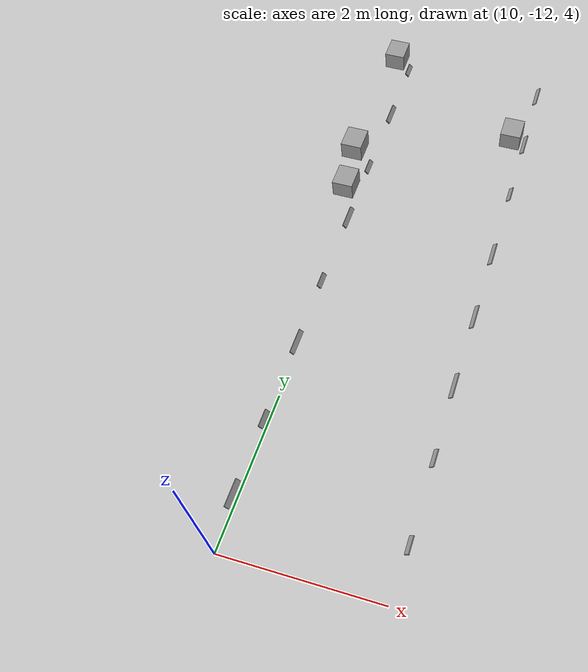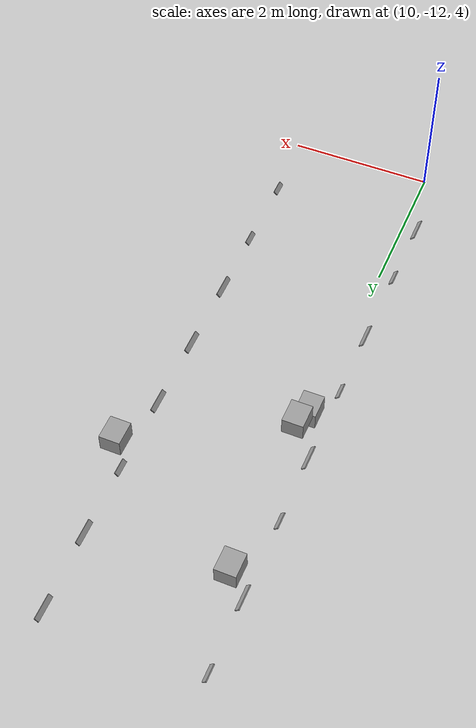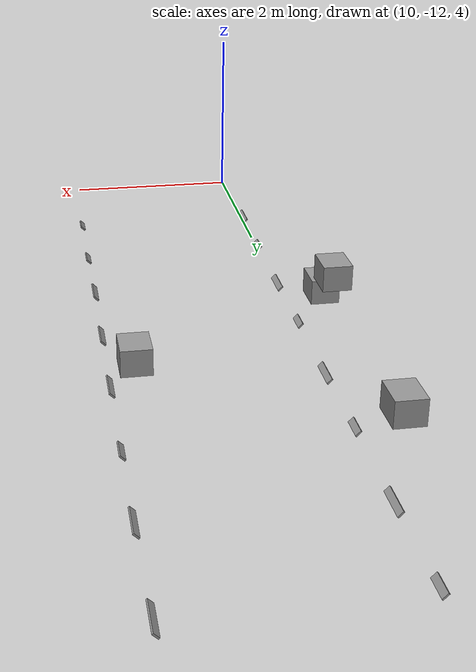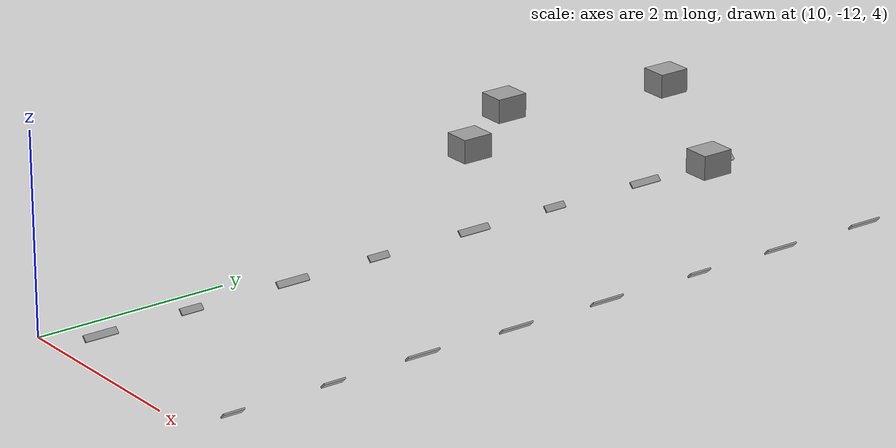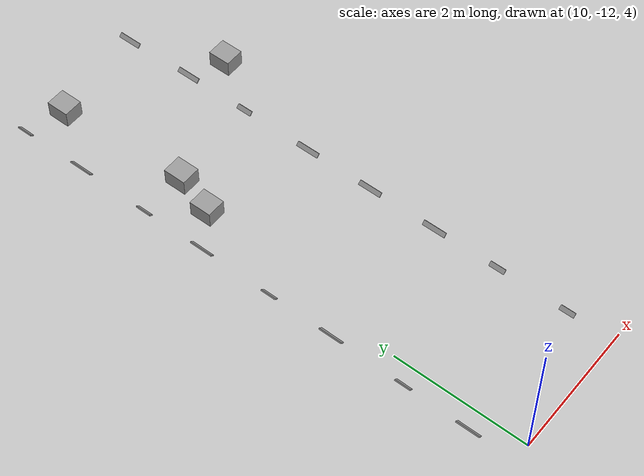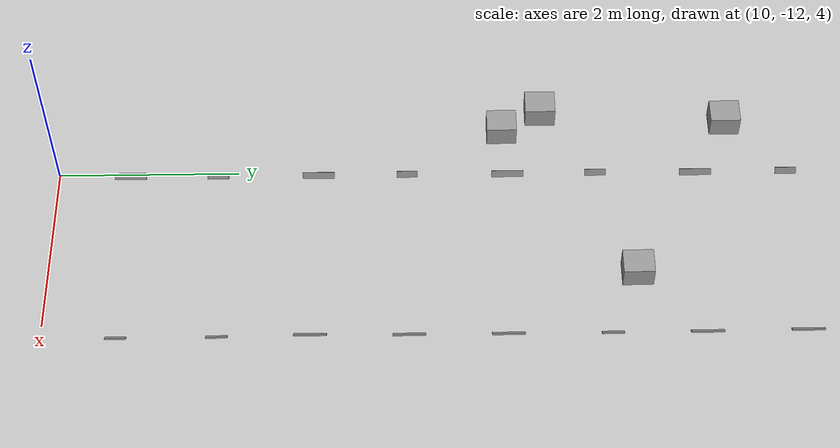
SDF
<sdf version="1.6">
 <world name="default">
  <physics name="default_physics" default="1" type="ode">
   <max_step_size>0.008</max_step_size>
   <real_time_factor>1</real_time_factor>
   <real_time_update_rate>125</real_time_update_rate>
  </physics>
  <physics name="dart_physics" default="0" type="dart">
   <max_step_size>0.008</max_step_size>
   <real_time_factor>1</real_time_factor>
   <real_time_update_rate>125</real_time_update_rate>
  </physics>
  <scene>
   <ambient>1 1 1 1</ambient>
   <background>0 0 0 1</background>
   <fog><density>0</density></fog>
   <grid>0</grid>
   <shadows>0</shadows>
  </scene>
  <gravity>0 0 0</gravity>
  <magnetic_field>0 0 0</magnetic_field>
  <atmosphere type="adiabatic"/>
  <spherical_coordinates>
   <surface_model>EARTH_WGS84</surface_model>
   <latitude_deg>0</latitude_deg>
   <longitude_deg>0</longitude_deg>
   <elevation>0</elevation>
   <heading_deg>0</heading_deg>
  </spherical_coordinates>
  <model name="light0">
   <pose>12.0022 -9.16995 3.79 0 -0.792 0</pose>
   <link name="link">
    <inertial>
     <mass>1</mass>
     <inertia>
      <ixx>0.166667</ixx>
      <ixy>0</ixy>
      <ixz>0</ixz>
      <iyy>0.166667</iyy>
      <iyz>0</iyz>
      <izz>0.166667</izz>
     </inertia>
    </inertial>
    <collision name="collision"><geometry><box><size>0.071232 0.355734 0.01687</size></box></geometry></collision>
    <visual name="visual">
     <geometry><box><size>0.071232 0.355734 0.01687</size></box></geometry>
     <material>
      <script><name>Gazebo/Grey</name><uri>file://media/materials/scripts/gazebo.material</uri></script>
     </material>
    </visual>
   </link>
   <static>1</static>
  </model>
  <model name="light1">
   <pose>12.0084 -8.10747 3.78182 0 -0.780816 0</pose>
   <link name="link">
    <inertial>
     <mass>1</mass>
     <inertia>
      <ixx>0.166667</ixx>
      <ixy>0</ixy>
      <ixz>0</ixz>
      <iyy>0.166667</iyy>
      <iyz>0</iyz>
      <izz>0.166667</izz>
     </inertia>
    </inertial>
    <collision name="collision"><geometry><box><size>0.071232 0.355734 0.01687</size></box></geometry></collision>
    <visual name="visual">
     <geometry><box><size>0.071232 0.355734 0.01687</size></box></geometry>
     <material>
      <script><name>Gazebo/Grey</name><uri>file://media/materials/scripts/gazebo.material</uri></script>
     </material>
    </visual>
   </link>
   <static>1</static>
  </model>
  <model name="light2">
   <pose>12.0101 -7.04486 3.78182 0 -0.780816 0</pose>
   <link name="link">
    <inertial>
     <mass>1</mass>
     <inertia>
      <ixx>0.166667</ixx>
      <ixy>0</ixy>
      <ixz>0</ixz>
      <iyy>0.166667</iyy>
      <iyz>0</iyz>
      <izz>0.166667</izz>
     </inertia>
    </inertial>
    <collision name="collision"><geometry><box><size>0.071232 0.355734 0.01687</size></box></geometry></collision>
    <visual name="visual">
     <geometry><box><size>0.071232 0.355734 0.01687</size></box></geometry>
     <material>
      <script><name>Gazebo/Grey</name><uri>file://media/materials/scripts/gazebo.material</uri></script>
     </material>
    </visual>
   </link>
   <static>1</static>
  </model>
  <model name="light3">
   <pose>12.0119 -5.92762 3.78182 0 -0.780816 0</pose>
   <link name="link">
    <inertial>
     <mass>1</mass>
     <inertia>
      <ixx>0.166667</ixx>
      <ixy>0</ixy>
      <ixz>0</ixz>
      <iyy>0.166667</iyy>
      <iyz>0</iyz>
      <izz>0.166667</izz>
     </inertia>
    </inertial>
    <collision name="collision"><geometry><box><size>0.071232 0.239949 0.01687</size></box></geometry></collision>
    <visual name="visual">
     <geometry><box><size>0.071232 0.239949 0.01687</size></box></geometry>
     <material>
      <script><name>Gazebo/Grey</name><uri>file://media/materials/scripts/gazebo.material</uri></script>
     </material>
    </visual>
   </link>
   <static>1</static>
  </model>
  <model name="light4">
   <pose>12.0084 -4.91259 3.78182 0 -0.780816 0</pose>
   <link name="link">
    <inertial>
     <mass>1</mass>
     <inertia>
      <ixx>0.166667</ixx>
      <ixy>0</ixy>
      <ixz>0</ixz>
      <iyy>0.166667</iyy>
      <iyz>0</iyz>
      <izz>0.166667</izz>
     </inertia>
    </inertial>
    <collision name="collision"><geometry><box><size>0.071232 0.355734 0.01687</size></box></geometry></collision>
    <visual name="visual">
     <geometry><box><size>0.071232 0.355734 0.01687</size></box></geometry>
     <material>
      <script><name>Gazebo/Grey</name><uri>file://media/materials/scripts/gazebo.material</uri></script>
     </material>
    </visual>
   </link>
   <static>1</static>
  </model>
  <model name="light5">
   <pose>11.99 -3.83 3.77 0 -0.79 0</pose>
   <link name="link">
    <inertial>
     <mass>1</mass>
     <inertia>
      <ixx>0.166667</ixx>
      <ixy>0</ixy>
      <ixz>0</ixz>
      <iyy>0.166667</iyy>
      <iyz>0</iyz>
      <izz>0.166667</izz>
     </inertia>
    </inertial>
    <collision name="collision"><geometry><box><size>0.071232 0.355734 0.01687</size></box></geometry></collision>
    <visual name="visual">
     <geometry><box><size>0.071232 0.355734 0.01687</size></box></geometry>
     <material>
      <script><name>Gazebo/Grey</name><uri>file://media/materials/scripts/gazebo.material</uri></script>
     </material>
    </visual>
   </link>
   <static>1</static>
  </model>
  <model name="light6">
   <pose>12.0137 -10.1692 3.78182 0 -0.780816 0</pose>
   <link name="link">
    <inertial>
     <mass>1</mass>
     <inertia>
      <ixx>0.166667</ixx>
      <ixy>0</ixy>
      <ixz>0</ixz>
      <iyy>0.166667</iyy>
      <iyz>0</iyz>
      <izz>0.166667</izz>
     </inertia>
    </inertial>
    <collision name="collision"><geometry><box><size>0.071232 0.235975 0.01687</size></box></geometry></collision>
    <visual name="visual">
     <geometry><box><size>0.071232 0.235975 0.01687</size></box></geometry>
     <material>
      <script><name>Gazebo/Grey</name><uri>file://media/materials/scripts/gazebo.material</uri></script>
     </material>
    </visual>
   </link>
   <static>1</static>
  </model>
  <model name="light7">
   <pose>12.0154 -11.2495 3.78182 0 -0.780816 0</pose>
   <link name="link">
    <inertial>
     <mass>1</mass>
     <inertia>
      <ixx>0.166667</ixx>
      <ixy>0</ixy>
      <ixz>0</ixz>
      <iyy>0.166667</iyy>
      <iyz>0</iyz>
      <izz>0.166667</izz>
     </inertia>
    </inertial>
    <collision name="collision"><geometry><box><size>0.071232 0.224897 0.01687</size></box></geometry></collision>
    <visual name="visual">
     <geometry><box><size>0.071232 0.224897 0.01687</size></box></geometry>
     <material>
      <script><name>Gazebo/Grey</name><uri>file://media/materials/scripts/gazebo.material</uri></script>
     </material>
    </visual>
   </link>
   <static>1</static>
  </model>
  <model name="light8">
   <pose>9.86822 -9.12294 3.78182 0 0.780816 0</pose>
   <link name="link">
    <inertial>
     <mass>1</mass>
     <inertia>
      <ixx>0.166667</ixx>
      <ixy>0</ixy>
      <ixz>0</ixz>
      <iyy>0.166667</iyy>
      <iyz>0</iyz>
      <izz>0.166667</izz>
     </inertia>
    </inertial>
    <collision name="collision"><geometry><box><size>0.071232 0.355734 0.01687</size></box></geometry></collision>
    <visual name="visual">
     <geometry><box><size>0.071232 0.355734 0.01687</size></box></geometry>
     <material>
      <script><name>Gazebo/Grey</name><uri>file://media/materials/scripts/gazebo.material</uri></script>
     </material>
    </visual>
   </link>
   <static>1</static>
  </model>
  <model name="light9">
   <pose>9.86365 -8.12121 3.78182 0 0.804806 0</pose>
   <link name="link">
    <inertial>
     <mass>1</mass>
     <inertia>
      <ixx>0.166667</ixx>
      <ixy>0</ixy>
      <ixz>0</ixz>
      <iyy>0.166667</iyy>
      <iyz>0</iyz>
      <izz>0.166667</izz>
     </inertia>
    </inertial>
    <collision name="collision"><geometry><box><size>0.071232 0.232843 0.01687</size></box></geometry></collision>
    <visual name="visual">
     <geometry><box><size>0.071232 0.232843 0.01687</size></box></geometry>
     <material>
      <script><name>Gazebo/Grey</name><uri>file://media/materials/scripts/gazebo.material</uri></script>
     </material>
    </visual>
   </link>
   <static>1</static>
  </model>
  <model name="light10">
   <pose>9.87086 -6.98625 3.78182 0 0.804806 0</pose>
   <link name="link">
    <inertial>
     <mass>1</mass>
     <inertia>
      <ixx>0.166667</ixx>
      <ixy>0</ixy>
      <ixz>0</ixz>
      <iyy>0.166667</iyy>
      <iyz>0</iyz>
      <izz>0.166667</izz>
     </inertia>
    </inertial>
    <collision name="collision"><geometry><box><size>0.071232 0.355734 0.01687</size></box></geometry></collision>
    <visual name="visual">
     <geometry><box><size>0.071232 0.355734 0.01687</size></box></geometry>
     <material>
      <script><name>Gazebo/Grey</name><uri>file://media/materials/scripts/gazebo.material</uri></script>
     </material>
    </visual>
   </link>
   <static>1</static>
  </model>
  <model name="light11">
   <pose>9.86338 -5.9905 3.78182 0 0.804806 0</pose>
   <link name="link">
    <inertial>
     <mass>1</mass>
     <inertia>
      <ixx>0.166667</ixx>
      <ixy>0</ixy>
      <ixz>0</ixz>
      <iyy>0.166667</iyy>
      <iyz>0</iyz>
      <izz>0.166667</izz>
     </inertia>
    </inertial>
    <collision name="collision"><geometry><box><size>0.071232 0.240676 0.01687</size></box></geometry></collision>
    <visual name="visual">
     <geometry><box><size>0.071232 0.240676 0.01687</size></box></geometry>
     <material>
      <script><name>Gazebo/Grey</name><uri>file://media/materials/scripts/gazebo.material</uri></script>
     </material>
    </visual>
   </link>
   <static>1</static>
  </model>
  <model name="light12">
   <pose>9.87182 -4.85761 3.78182 0 0.804806 0</pose>
   <link name="link">
    <inertial>
     <mass>1</mass>
     <inertia>
      <ixx>0.166667</ixx>
      <ixy>0</ixy>
      <ixz>0</ixz>
      <iyy>0.166667</iyy>
      <iyz>0</iyz>
      <izz>0.166667</izz>
     </inertia>
    </inertial>
    <collision name="collision"><geometry><box><size>0.071232 0.355734 0.01687</size></box></geometry></collision>
    <visual name="visual">
     <geometry><box><size>0.071232 0.355734 0.01687</size></box></geometry>
     <material>
      <script><name>Gazebo/Grey</name><uri>file://media/materials/scripts/gazebo.material</uri></script>
     </material>
    </visual>
   </link>
   <static>1</static>
  </model>
  <model name="light13">
   <pose>9.8649 -3.8314 3.78182 0 0.804806 0</pose>
   <link name="link">
    <inertial>
     <mass>1</mass>
     <inertia>
      <ixx>0.166667</ixx>
      <ixy>0</ixy>
      <ixz>0</ixz>
      <iyy>0.166667</iyy>
      <iyz>0</iyz>
      <izz>0.166667</izz>
     </inertia>
    </inertial>
    <collision name="collision"><geometry><box><size>0.071232 0.237345 0.01687</size></box></geometry></collision>
    <visual name="visual">
     <geometry><box><size>0.071232 0.237345 0.01687</size></box></geometry>
     <material>
      <script><name>Gazebo/Grey</name><uri>file://media/materials/scripts/gazebo.material</uri></script>
     </material>
    </visual>
   </link>
   <static>1</static>
  </model>
  <model name="light14">
   <pose>9.86008 -10.261 3.78182 0 0.804806 0</pose>
   <link name="link">
    <inertial>
     <mass>1</mass>
     <inertia>
      <ixx>0.166667</ixx>
      <ixy>0</ixy>
      <ixz>0</ixz>
      <iyy>0.166667</iyy>
      <iyz>0</iyz>
      <izz>0.166667</izz>
     </inertia>
    </inertial>
    <collision name="collision"><geometry><box><size>0.071232 0.239867 0.01687</size></box></geometry></collision>
    <visual name="visual">
     <geometry><box><size>0.071232 0.239867 0.01687</size></box></geometry>
     <material>
      <script><name>Gazebo/Grey</name><uri>file://media/materials/scripts/gazebo.material</uri></script>
     </material>
    </visual>
   </link>
   <static>1</static>
  </model>
  <model name="light15">
   <pose>9.85249 -11.2506 3.78182 0 0.804806 0</pose>
   <link name="link">
    <inertial>
     <mass>1</mass>
     <inertia>
      <ixx>0.166667</ixx>
      <ixy>0</ixy>
      <ixz>0</ixz>
      <iyy>0.166667</iyy>
      <iyz>0</iyz>
      <izz>0.166667</izz>
     </inertia>
    </inertial>
    <collision name="collision"><geometry><box><size>0.071232 0.355734 0.01687</size></box></geometry></collision>
    <visual name="visual">
     <geometry><box><size>0.071232 0.355734 0.01687</size></box></geometry>
     <material>
      <script><name>Gazebo/Grey</name><uri>file://media/materials/scripts/gazebo.material</uri></script>
     </material>
    </visual>
   </link>
   <static>1</static>
  </model>
  <model name="laptop0">
   <pose>9.94 -6.68 5.031 0 -0 0</pose>
   <link name="link">
    <inertial>
     <mass>1</mass>
     <inertia>
      <ixx>0.166667</ixx>
      <ixy>0</ixy>
      <ixz>0</ixz>
      <iyy>0.166667</iyy>
      <iyz>0</iyz>
      <izz>0.166667</izz>
     </inertia>
    </inertial>
    <collision name="collision">
     <geometry><box><size>0.272989 0.320818 0.241715</size></box></geometry>
    </collision>
    <visual name="visual">
     <geometry><box><size>0.272989 0.320818 0.241715</size></box></geometry>
     <material>
      <script><name>Gazebo/Grey</name><uri>file://media/materials/scripts/gazebo.material</uri></script>
     </material>
    </visual>
   </link>
   <static>1</static>
  </model>
  <model name="laptop1">
   <pose>9.93378 -4.66409 4.83858 0 9.1e-05 -5e-06</pose>
   <link name="link">
    <inertial>
     <mass>1</mass>
     <inertia>
      <ixx>0.166667</ixx>
      <ixy>0</ixy>
      <ixz>0</ixz>
      <iyy>0.166667</iyy>
      <iyz>0</iyz>
      <izz>0.166667</izz>
     </inertia>
    </inertial>
    <collision name="collision">
     <geometry><box><size>0.272989 0.320818 0.241715</size></box></geometry>
    </collision>
    <visual name="visual">
     <geometry><box><size>0.272989 0.320818 0.241715</size></box></geometry>
     <material>
      <script><name>Gazebo/Grey</name><uri>file://media/materials/scripts/gazebo.material</uri></script>
     </material>
    </visual>
   </link>
   <static>1</static>
  </model>
  <model name="laptop2">
   <pose>11.894 -5.74222 4.83858 0 9.1e-05 -5e-06</pose>
   <link name="link">
    <inertial>
     <mass>1</mass>
     <inertia>
      <ixx>0.166667</ixx>
      <ixy>0</ixy>
      <ixz>0</ixz>
      <iyy>0.166667</iyy>
      <iyz>0</iyz>
      <izz>0.166667</izz>
     </inertia>
    </inertial>
    <collision name="collision">
     <geometry><box><size>0.272989 0.320818 0.241715</size></box></geometry>
    </collision>
    <visual name="visual">
     <geometry><box><size>0.272989 0.320818 0.241715</size></box></geometry>
     <material>
      <script><name>Gazebo/Grey</name><uri>file://media/materials/scripts/gazebo.material</uri></script>
     </material>
    </visual>
   </link>
   <static>1</static>
  </model>
  <model name="laptop3">
   <pose>9.9298 -7.084 4.707 0 9.1e-05 -5e-06</pose>
   <link name="link">
    <inertial>
     <mass>1</mass>
     <inertia>
      <ixx>0.166667</ixx>
      <ixy>0</ixy>
      <ixz>0</ixz>
      <iyy>0.166667</iyy>
      <iyz>0</iyz>
      <izz>0.166667</izz>
     </inertia>
    </inertial>
    <collision name="collision">
     <geometry><box><size>0.272989 0.320818 0.241715</size></box></geometry>
    </collision>
    <visual name="visual">
     <geometry><box><size>0.272989 0.320818 0.241715</size></box></geometry>
     <material>
      <script><name>Gazebo/Grey</name><uri>file://media/materials/scripts/gazebo.material</uri></script>
     </material>
    </visual>
   </link>
   <static>1</static>
  </model>
  <light name="user_point_light_px" type="point">
   <pose>30 0 0 0 -0 0</pose>
   <diffuse>0.5 0.5 0.5 1</diffuse>
   <specular>0.1 0.1 0.1 1</specular>
   <attenuation>
    <range>100</range>
    <constant>0.1</constant>
    <linear>0.001</linear>
    <quadratic>0.001</quadratic>
   </attenuation>
   <cast_shadows>0</cast_shadows>
   <direction>0 0 -1</direction>
  </light>
  <light name="user_point_light_nx" type="point">
   <pose>-30 0 0 0 -0 0</pose>
   <diffuse>0.5 0.5 0.5 1</diffuse>
   <specular>0.1 0.1 0.1 1</specular>
   <attenuation>
    <range>100</range>
    <constant>0.1</constant>
    <linear>0.001</linear>
    <quadratic>0.001</quadratic>
   </attenuation>
   <cast_shadows>0</cast_shadows>
   <direction>0 0 -1</direction>
  </light>
  <light name="user_point_light_py" type="point">
   <pose>0 30 0 0 -0 0</pose>
   <diffuse>0.5 0.5 0.5 1</diffuse>
   <specular>0.1 0.1 0.1 1</specular>
   <attenuation>
    <range>100</range>
    <constant>0.1</constant>
    <linear>0.001</linear>
    <quadratic>0.001</quadratic>
   </attenuation>
   <cast_shadows>0</cast_shadows>
   <direction>0 0 -1</direction>
  </light>
  <light name="user_point_light_ny" type="point">
   <pose>0 -30 0 0 -0 0</pose>
   <diffuse>0.5 0.5 0.5 1</diffuse>
   <specular>0.1 0.1 0.1 1</specular>
   <attenuation>
    <range>100</range>
    <constant>0.1</constant>
    <linear>0.001</linear>
    <quadratic>0.001</quadratic>
   </attenuation>
   <cast_shadows>0</cast_shadows>
   <direction>0 0 -1</direction>
  </light>
  <light name="user_point_light_pz" type="point">
   <pose>0 0 30 0 -0 0</pose>
   <diffuse>0.5 0.5 0.5 1</diffuse>
   <specular>0.1 0.1 0.1 1</specular>
   <attenuation>
    <range>100</range>
    <constant>0.1</constant>
    <linear>0.001</linear>
    <quadratic>0.001</quadratic>
   </attenuation>
   <cast_shadows>0</cast_shadows>
   <direction>0 0 -1</direction>
  </light>
  <light name="user_point_light_nz" type="point">
   <pose>0 0 -30 0 -0 0</pose>
   <diffuse>0.5 0.5 0.5 1</diffuse>
   <specular>0.1 0.1 0.1 1</specular>
   <attenuation>
    <range>100</range>
    <constant>0.1</constant>
    <linear>0.001</linear>
    <quadratic>0.001</quadratic>
   </attenuation>
   <cast_shadows>0</cast_shadows>
   <direction>0 0 -1</direction>
  </light>
  <plugin name="plugin_speed" filename="libgazebo_world_plugin_speed.so"/>
 </world>
</sdf>
